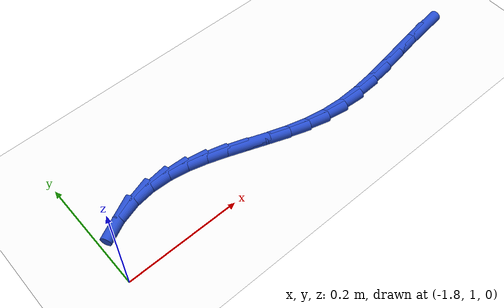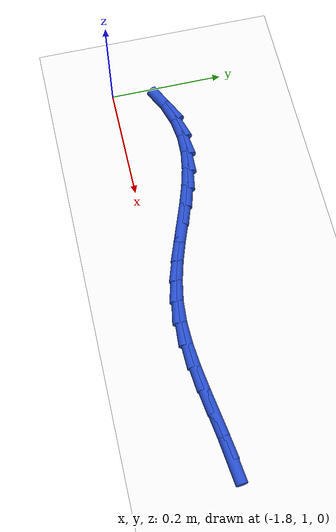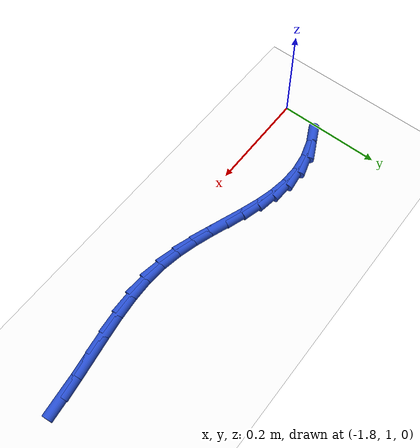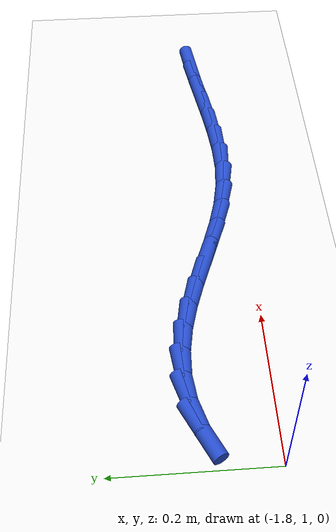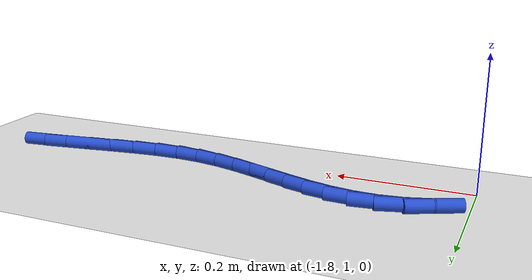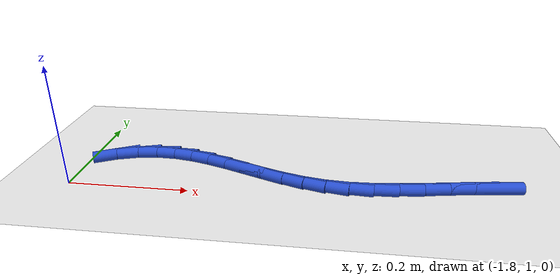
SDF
<sdf version="1.6">
 <world name="default">
  <model name="ground_plane">
   <static>1</static>
   <link name="link">
    <collision name="collision">
     <geometry><plane><normal>0 0 1</normal><size>100 100</size></plane></geometry>
     <surface><friction><ode><mu>100</mu><mu2>50</mu2></ode></friction></surface>
    </collision>
    <visual name="visual">
     <cast_shadows>0</cast_shadows>
     <geometry><plane><normal>0 0 1</normal><size>100 100</size></plane></geometry>
     <material>
      <script><uri>file://media/materials/scripts/gazebo.material</uri><name>Gazebo/WhiteGlow</name></script>
     </material>
    </visual>
   </link>
  </model>
  <model name="line">
   <link name="link_53">
    <pose>-1.1126787272833478 1.0506789820230809 0.01 0 1.57 0.1229192380008859</pose>
    <collision name="collision">
     <geometry><cylinder><radius>0.01</radius><length>0.08</length></cylinder></geometry>
    </collision>
    <visual name="visual">
     <material>
      <script><name>Gazebo/Blue</name><uri>file://media/materials/scripts/gazebo.material</uri></script>
     </material>
     <geometry><cylinder><radius>0.01</radius><length>0.08</length></cylinder></geometry>
    </visual>
   </link>
   <link name="link_54">
    <pose>-1.1500548135157482 1.0460614629460963 0.01 0 1.57 0.1530213847281046</pose>
    <collision name="collision">
     <geometry><cylinder><radius>0.01</radius><length>0.08</length></cylinder></geometry>
    </collision>
    <visual name="visual">
     <material>
      <script><name>Gazebo/Blue</name><uri>file://media/materials/scripts/gazebo.material</uri></script>
     </material>
     <geometry><cylinder><radius>0.01</radius><length>0.08</length></cylinder></geometry>
    </visual>
   </link>
   <link name="link_55">
    <pose>-1.1886630090130217 1.040107035309509 0.01 0 1.57 0.15809950804738554</pose>
    <collision name="collision">
     <geometry><cylinder><radius>0.01</radius><length>0.08</length></cylinder></geometry>
    </collision>
    <visual name="visual">
     <material>
      <script><name>Gazebo/Blue</name><uri>file://media/materials/scripts/gazebo.material</uri></script>
     </material>
     <geometry><cylinder><radius>0.01</radius><length>0.08</length></cylinder></geometry>
    </visual>
   </link>
   <link name="link_56">
    <pose>-1.228011252352672 1.0338337421519548 0.01 0 1.57 0.13985488262994417</pose>
    <collision name="collision">
     <geometry><cylinder><radius>0.01</radius><length>0.08</length></cylinder></geometry>
    </collision>
    <visual name="visual">
     <material>
      <script><name>Gazebo/Blue</name><uri>file://media/materials/scripts/gazebo.material</uri></script>
     </material>
     <geometry><cylinder><radius>0.01</radius><length>0.08</length></cylinder></geometry>
    </visual>
   </link>
   <link name="link_57">
    <pose>-1.267607482112205 1.0282596265120705 0.01 0 1.57 0.09769772799467649</pose>
    <collision name="collision">
     <geometry><cylinder><radius>0.01</radius><length>0.08</length></cylinder></geometry>
    </collision>
    <visual name="visual">
     <material>
      <script><name>Gazebo/Blue</name><uri>file://media/materials/scripts/gazebo.material</uri></script>
     </material>
     <geometry><cylinder><radius>0.01</radius><length>0.08</length></cylinder></geometry>
    </visual>
   </link>
   <link name="link_58">
    <pose>-1.3069596368691236 1.0244027314284916 0.01 0 1.57 0.029037593023130994</pose>
    <collision name="collision">
     <geometry><cylinder><radius>0.01</radius><length>0.08</length></cylinder></geometry>
    </collision>
    <visual name="visual">
     <material>
      <script><name>Gazebo/Blue</name><uri>file://media/materials/scripts/gazebo.material</uri></script>
     </material>
     <geometry><cylinder><radius>0.01</radius><length>0.08</length></cylinder></geometry>
    </visual>
   </link>
   <link name="link_59">
    <pose>-1.3455756552009326 1.0232810999398543 0.01 0 1.57 -0.06986609626047219</pose>
    <collision name="collision">
     <geometry><cylinder><radius>0.01</radius><length>0.08</length></cylinder></geometry>
    </collision>
    <visual name="visual">
     <material>
      <script><name>Gazebo/Blue</name><uri>file://media/materials/scripts/gazebo.material</uri></script>
     </material>
     <geometry><cylinder><radius>0.01</radius><length>0.08</length></cylinder></geometry>
    </visual>
   </link>
   <link name="link_60">
    <pose>-1.3829688667156486 1.0258978767738631 0.01 0 1.57 -0.18056665489747512</pose>
    <collision name="collision">
     <geometry><cylinder><radius>0.01</radius><length>0.08</length></cylinder></geometry>
    </collision>
    <visual name="visual">
     <material>
      <script><name>Gazebo/Blue</name><uri>file://media/materials/scripts/gazebo.material</uri></script>
     </material>
     <geometry><cylinder><radius>0.01</radius><length>0.08</length></cylinder></geometry>
    </visual>
   </link>
   <link name="link_61">
    <pose>-1.4189391112707923 1.0324644250550838 0.01 0 1.57 -0.2681983080207443</pose>
    <collision name="collision">
     <geometry><cylinder><radius>0.01</radius><length>0.08</length></cylinder></geometry>
    </collision>
    <visual name="visual">
     <material>
      <script><name>Gazebo/Blue</name><uri>file://media/materials/scripts/gazebo.material</uri></script>
     </material>
     <geometry><cylinder><radius>0.01</radius><length>0.08</length></cylinder></geometry>
    </visual>
   </link>
   <link name="link_62">
    <pose>-1.4537102831497049 1.042020217919219 0.01 0 1.57 -0.32741073580321023</pose>
    <collision name="collision">
     <geometry><cylinder><radius>0.01</radius><length>0.08</length></cylinder></geometry>
    </collision>
    <visual name="visual">
     <material>
      <script><name>Gazebo/Blue</name><uri>file://media/materials/scripts/gazebo.material</uri></script>
     </material>
     <geometry><cylinder><radius>0.01</radius><length>0.08</length></cylinder></geometry>
    </visual>
   </link>
   <link name="link_63">
    <pose>-1.4875405091364668 1.0535101257282136 0.01 0 1.57 -0.3571461313098198</pose>
    <collision name="collision">
     <geometry><cylinder><radius>0.01</radius><length>0.08</length></cylinder></geometry>
    </collision>
    <visual name="visual">
     <material>
      <script><name>Gazebo/Blue</name><uri>file://media/materials/scripts/gazebo.material</uri></script>
     </material>
     <geometry><cylinder><radius>0.01</radius><length>0.08</length></cylinder></geometry>
    </visual>
   </link>
   <link name="link_64">
    <pose>-1.5206879160151592 1.0658790188440124 0.01 0 1.57 -0.3566720225076159</pose>
    <collision name="collision">
     <geometry><cylinder><radius>0.01</radius><length>0.08</length></cylinder></geometry>
    </collision>
    <visual name="visual">
     <material>
      <script><name>Gazebo/Blue</name><uri>file://media/materials/scripts/gazebo.material</uri></script>
     </material>
     <geometry><cylinder><radius>0.01</radius><length>0.08</length></cylinder></geometry>
    </visual>
   </link>
   <link name="link_65">
    <pose>-1.55341063056986 1.0780717676285592 0.01 0 1.57 -0.3247725065992982</pose>
    <collision name="collision">
     <geometry><cylinder><radius>0.01</radius><length>0.08</length></cylinder></geometry>
    </collision>
    <visual name="visual">
     <material>
      <script><name>Gazebo/Blue</name><uri>file://media/materials/scripts/gazebo.material</uri></script>
     </material>
     <geometry><cylinder><radius>0.01</radius><length>0.08</length></cylinder></geometry>
    </visual>
   </link>
   <link name="link_66">
    <pose>-1.5859667795846524 1.0890332424438 0.01 0 1.57 -0.2597161242606549</pose>
    <collision name="collision">
     <geometry><cylinder><radius>0.01</radius><length>0.08</length></cylinder></geometry>
    </collision>
    <visual name="visual">
     <material>
      <script><name>Gazebo/Blue</name><uri>file://media/materials/scripts/gazebo.material</uri></script>
     </material>
     <geometry><cylinder><radius>0.01</radius><length>0.08</length></cylinder></geometry>
    </visual>
   </link>
   <link name="link_67">
    <pose>-1.618614489843614 1.0977083136516783 0.01 0 1.57 -0.16024914616022157</pose>
    <collision name="collision">
     <geometry><cylinder><radius>0.01</radius><length>0.08</length></cylinder></geometry>
    </collision>
    <visual name="visual">
     <material>
      <script><name>Gazebo/Blue</name><uri>file://media/materials/scripts/gazebo.material</uri></script>
     </material>
     <geometry><cylinder><radius>0.01</radius><length>0.08</length></cylinder></geometry>
    </visual>
   </link>
   <link name="link_68">
    <pose>-1.6516118881308255 1.1030418516141387 0.01 0 1.57 -0.02787164201527652</pose>
    <collision name="collision">
     <geometry><cylinder><radius>0.01</radius><length>0.08</length></cylinder></geometry>
    </collision>
    <visual name="visual">
     <material>
      <script><name>Gazebo/Blue</name><uri>file://media/materials/scripts/gazebo.material</uri></script>
     </material>
     <geometry><cylinder><radius>0.01</radius><length>0.08</length></cylinder></geometry>
    </visual>
   </link>
   <link name="link_69">
    <pose>-1.6852171012303667 1.103978726693126 0.01 0 1.57 0.1302353335444501</pose>
    <collision name="collision">
     <geometry><cylinder><radius>0.01</radius><length>0.08</length></cylinder></geometry>
    </collision>
    <visual name="visual">
     <material>
      <script><name>Gazebo/Blue</name><uri>file://media/materials/scripts/gazebo.material</uri></script>
     </material>
     <geometry><cylinder><radius>0.01</radius><length>0.08</length></cylinder></geometry>
    </visual>
   </link>
   <link name="link_70">
    <pose>-1.7196882559263191 1.099463809250585 0.01 0 1.57 0.3002806532966259</pose>
    <collision name="collision">
     <geometry><cylinder><radius>0.01</radius><length>0.08</length></cylinder></geometry>
    </collision>
    <visual name="visual">
     <material>
      <script><name>Gazebo/Blue</name><uri>file://media/materials/scripts/gazebo.material</uri></script>
     </material>
     <geometry><cylinder><radius>0.01</radius><length>0.08</length></cylinder></geometry>
    </visual>
   </link>
   <link name="link_71">
    <pose>-1.755283479002761 1.0884419696484602 0.01 0 1.57 0.46568175596118044</pose>
    <collision name="collision">
     <geometry><cylinder><radius>0.01</radius><length>0.08</length></cylinder></geometry>
    </collision>
    <visual name="visual">
     <material>
      <script><name>Gazebo/Blue</name><uri>file://media/materials/scripts/gazebo.material</uri></script>
     </material>
     <geometry><cylinder><radius>0.01</radius><length>0.08</length></cylinder></geometry>
    </visual>
   </link>
  </model>
 </world>
</sdf>
